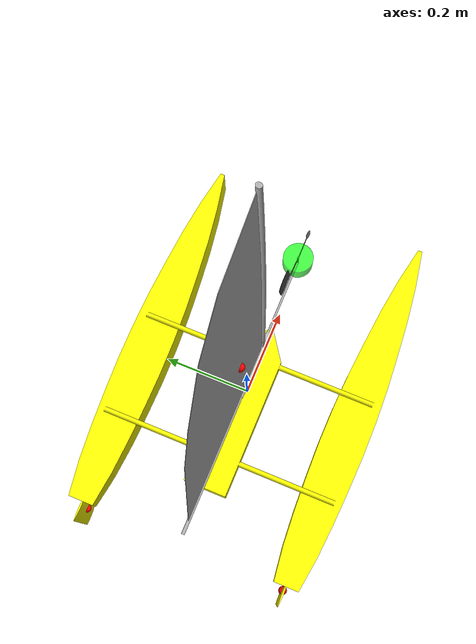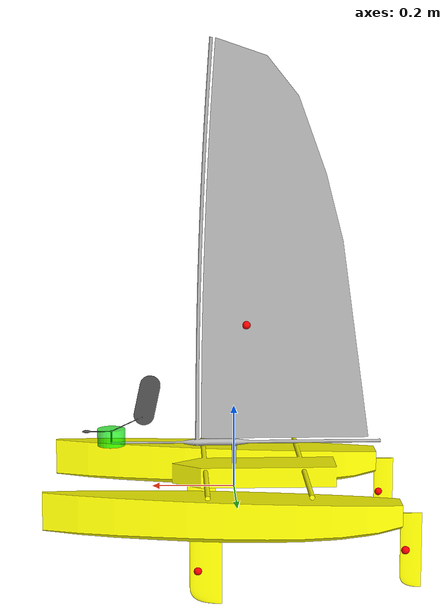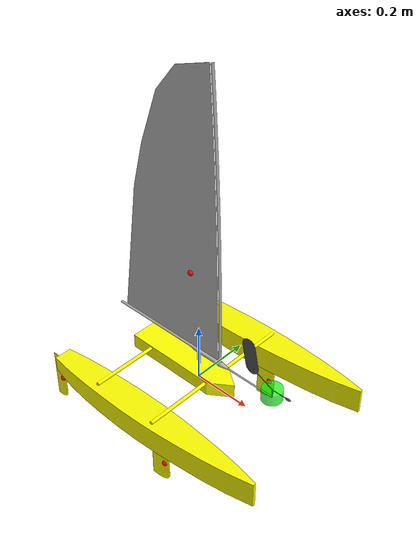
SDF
<sdf version="1.9">
  <model name="catamaran">
    <link name="base_link">
      <inertial>
        <pose>0.04 0 0 0 0 0</pose>
        <mass>1.4</mass>
        <inertia>
          <ixx>0.044213983</ixx>
          <ixy>0</ixy>
          <ixz>0</ixz>
          <iyy>0.082023783</iyy>
          <iyz>0</iyz>
          <izz>0.122933533</izz>
        </inertia>
      </inertial>
      <collision name="hull_left_collision">
        <geometry>
          <mesh>
            <scale>1 1 1</scale>
            <uri>models://catamaran/meshes/hull_left_collision.stl</uri>
          </mesh>
        </geometry>
      </collision>
      <collision name="hull_right_collision">
        <geometry>
          <mesh>
            <scale>1 1 1</scale>
            <uri>models://catamaran/meshes/hull_right_collision.stl</uri>
          </mesh>
        </geometry>
      </collision>
      <visual name="hull_platform_visual">
        <geometry>
          <mesh>
            <scale>1 1 1</scale>
            <uri>models://catamaran/meshes/hull_platform.dae</uri>
          </mesh>
        </geometry>
        <material>
          <diffuse>1 1 0 1</diffuse>
          <ambient>1 1 0 1</ambient>
          <specular>1 1 1 1</specular>
          <pbr>
            <metal>
              <metalness>0.5</metalness>
              <roughness>0.5</roughness>
            </metal>
          </pbr>
        </material>
      </visual>

      <!-- leave visuals for debugging link / joint placement -->

      <visual name="anemometer_visual">
        <pose>0.3 0 0.125 0 0 0</pose>
        <geometry>
          <cylinder>
            <radius>0.034</radius>
            <length>0.04</length>
          </cylinder>
        </geometry>
        <material>
          <ambient>0 1 0 0.7</ambient>
          <diffuse>0 1 0 0.7</diffuse>
          <specular>0.1 0.1 0.1 0.7</specular>
        </material>
      </visual>

      <sensor name="anemometer" type="custom" gz:type="anemometer">
        <pose>0.3 0 0.125 0 0 0</pose>
        <always_on>1</always_on>
        <update_rate>30</update_rate>
        <gz:anemometer>
          <noise type="gaussian">
            <mean>0</mean>
            <stddev>0</stddev>
          </noise>
        </gz:anemometer>
      </sensor>

    </link>

    <link name="fin_left_link">
      <pose>0.113 0.25 -0.055 0 0 0</pose>
      <inertial>
        <pose>-0.0375 0 -0.08 0 0 0</pose>
        <mass>0.1</mass>
        <inertia>
          <ixx>0.000213649</ixx>
          <ixy>0</ixy>
          <ixz>0</ixz>
          <iyy>0.000260208</iyy>
          <iyz>0</iyz>
          <izz>4.71902E-05</izz>
        </inertia>
      </inertial>
      <collision name="collision">
        <geometry>
          <mesh>
            <uri>models://catamaran/meshes/fin_collision.stl</uri>
          </mesh>
        </geometry>
      </collision>
      <visual name="visual">
        <geometry>
          <mesh>
            <uri>models://catamaran/meshes/fin.dae</uri>
          </mesh>
        </geometry>
        <material>
          <diffuse>1 1 0 1</diffuse>
          <ambient>1 1 0 1</ambient>
          <specular>1 1 1 1</specular>
          <pbr>
            <metal>
              <metalness>0.5</metalness>
              <roughness>0.5</roughness>
            </metal>
          </pbr>
        </material>
      </visual>
      <visual name="cp_visual">
        <pose>-0.018875 0 -0.08 0 0 0</pose>
        <geometry>
          <sphere>
            <radius>0.01</radius>
          </sphere>
        </geometry>
        <material>
          <ambient>1 0 0 1</ambient>
          <diffuse>1 0 0 1</diffuse>
          <specular>0.1 0.1 0.1 1</specular>
        </material>
      </visual>
    </link>
    <joint name="fin_left_joint" type="revolute">
      <pose degrees="true">0 0 0 0 0 0</pose>
      <parent>base_link</parent>
      <child>fin_left_link</child>
      <axis>
        <xyz>0 0 1</xyz>
        <limit>
          <lower>0</lower>
          <upper>0</upper>
        </limit>
        <dynamics>
          <damping>1.0</damping>
        </dynamics>
      </axis>
    </joint>

    <link name="fin_right_link">
      <pose>0.113 -0.25 -0.055 0 0 0</pose>
      <inertial>
        <pose>-0.0375 0 -0.08 0 0 0</pose>
        <mass>0.1</mass>
        <inertia>
          <ixx>0.000213649</ixx>
          <ixy>0</ixy>
          <ixz>0</ixz>
          <iyy>0.000260208</iyy>
          <iyz>0</iyz>
          <izz>4.71902E-05</izz>
        </inertia>
      </inertial>
      <collision name="collision">
        <geometry>
          <mesh>
            <uri>models://catamaran/meshes/fin_collision.stl</uri>
          </mesh>
        </geometry>
      </collision>
      <visual name="visual">
        <geometry>
          <mesh>
            <uri>models://catamaran/meshes/fin.dae</uri>
          </mesh>
        </geometry>
        <material>
          <diffuse>1 1 0 1</diffuse>
          <ambient>1 1 0 1</ambient>
          <specular>1 1 1 1</specular>
          <pbr>
            <metal>
              <metalness>0.5</metalness>
              <roughness>0.5</roughness>
            </metal>
          </pbr>
        </material>
      </visual>
      <visual name="cp_visual">
        <pose>-0.018875 0 -0.08 0 0 0</pose>
        <geometry>
          <sphere>
            <radius>0.01</radius>
          </sphere>
        </geometry>
        <material>
          <ambient>1 0 0 1</ambient>
          <diffuse>1 0 0 1</diffuse>
          <specular>0.1 0.1 0.1 1</specular>
        </material>
      </visual>
    </link>
    <joint name="fin_right_joint" type="revolute">
      <pose degrees="true">0 0 0 0 0 0</pose>
      <parent>base_link</parent>
      <child>fin_right_link</child>
      <axis>
        <xyz>0 0 1</xyz>
        <limit>
          <lower>0</lower>
          <upper>0</upper>
        </limit>
        <dynamics>
          <damping>1.0</damping>
        </dynamics>
      </axis>
    </joint>

    <link name="rudder_left_link">
      <pose>-0.377 0.25 0 0 0 0</pose>
      <inertial>
        <pose>-0.025 0 -0.09 0 0 0</pose>
        <mass>0.1</mass>
        <inertia>
          <ixx>0.000270144</ixx>
          <ixy>0</ixy>
          <ixz>0</ixz>
          <iyy>0.000290833</iyy>
          <iyz>0</iyz>
          <izz>2.09775E-05</izz>
        </inertia>
      </inertial>
      <collision name="collision">
        <geometry>
          <mesh>
            <uri>models://catamaran/meshes/rudder_collision.stl</uri>
          </mesh>
        </geometry>
      </collision>
      <visual name="visual">
        <geometry>
          <mesh>
            <uri>models://catamaran/meshes/rudder.dae</uri>
          </mesh>
        </geometry>
        <material>
          <diffuse>1 1 0 1</diffuse>
          <ambient>1 1 0 1</ambient>
          <specular>1 1 1 1</specular>
          <pbr>
            <metal>
              <metalness>0.5</metalness>
              <roughness>0.5</roughness>
            </metal>
          </pbr>
        </material>
      </visual>
      <visual name="cp_visual">
        <pose>-0.012575 0 -0.09 0 0 0</pose>
        <geometry>
          <sphere>
            <radius>0.01</radius>
          </sphere>
        </geometry>
        <material>
          <ambient>1 0 0 1</ambient>
          <diffuse>1 0 0 1</diffuse>
          <specular>0.1 0.1 0.1 1</specular>
        </material>
      </visual>
    </link>
    <joint name="rudder_left_joint" type="revolute">
      <pose degrees="true">0 0 0 0 0 0</pose>
      <parent>base_link</parent>
      <child>rudder_left_link</child>
      <axis>
        <xyz>0 0 1</xyz>
        <limit>
          <lower>-1.5708</lower>
          <upper>1.5708</upper>
        </limit>
        <dynamics>
          <damping>0.001</damping>
        </dynamics>
      </axis>
    </joint>

    <link name="rudder_right_link">
      <pose>-0.377 -0.25 0 0 0 0</pose>
      <inertial>
        <pose>-0.025 0 -0.09 0 0 0</pose>
        <mass>0.1</mass>
        <inertia>
          <ixx>0.000270144</ixx>
          <ixy>0</ixy>
          <ixz>0</ixz>
          <iyy>0.000290833</iyy>
          <iyz>0</iyz>
          <izz>2.09775E-05</izz>
        </inertia>
      </inertial>
      <collision name="collision">
        <geometry>
          <mesh>
            <uri>models://catamaran/meshes/rudder_collision.stl</uri>
          </mesh>
        </geometry>
      </collision>
      <visual name="visual">
        <geometry>
          <mesh>
            <uri>models://catamaran/meshes/rudder.dae</uri>
          </mesh>
        </geometry>
        <material>
          <diffuse>1 1 0 1</diffuse>
          <ambient>1 1 0 1</ambient>
          <specular>1 1 1 1</specular>
          <pbr>
            <metal>
              <metalness>0.5</metalness>
              <roughness>0.5</roughness>
            </metal>
          </pbr>
        </material>
      </visual>
      <visual name="cp_visual">
        <pose>-0.012575 0 -0.09 0 0 0</pose>
        <geometry>
          <sphere>
            <radius>0.01</radius>
          </sphere>
        </geometry>
        <material>
          <ambient>1 0 0 1</ambient>
          <diffuse>1 0 0 1</diffuse>
          <specular>0.1 0.1 0.1 1</specular>
        </material>
      </visual>
    </link>
    <joint name="rudder_right_joint" type="revolute">
      <pose degrees="true">0 0 0 0 0 0</pose>
      <parent>base_link</parent>
      <child>rudder_right_link</child>
      <axis>
        <xyz>0 0 1</xyz>
        <limit>
          <lower>-1.5708</lower>
          <upper>1.5708</upper>
        </limit>
        <dynamics>
          <damping>0.001</damping>
        </dynamics>
      </axis>
    </joint>

    <link name="rig_link">
      <pose>0 0 0 0 0 0</pose>
      <inertial>
        <pose>0 0 0.4 0 0 0</pose>
        <mass>0.5</mass>
        <inertia>
          <ixx>0.081670833</ixx>
          <ixy>0</ixy>
          <iyy>0.088333333</iyy>
          <iyz>0</iyz>
          <izz>0.006670833</izz>
        </inertia>
      </inertial>
      <collision name="rig_collision">
        <geometry>
          <mesh>
            <uri>models://catamaran/meshes/rig.dae</uri>
          </mesh>
        </geometry>
      </collision>
      <visual name="rig_visual">
        <geometry>
          <mesh>
            <uri>models://catamaran/meshes/rig.dae</uri>
          </mesh>
        </geometry>
        <material>
          <diffuse>0.7 0.7 0.7 1</diffuse>
          <ambient>0.7 0.7 0.7 1</ambient>
          <specular>0.1 0.1 0.1 1</specular>
          <pbr>
            <metal>
              <metalness>0.5</metalness>
              <roughness>0.5</roughness>
            </metal>
          </pbr>
        </material>
      </visual>
      <visual name="cp_visual">
        <pose>-0.03 0 0.4 0 0 0</pose>
        <geometry>
          <sphere>
            <radius>0.01</radius>
          </sphere>
        </geometry>
        <material>
          <ambient>1 0 0 1</ambient>
          <diffuse>1 0 0 1</diffuse>
          <specular>0.1 0.1 0.1 1</specular>
        </material>
      </visual>
    </link>
    <joint name="rig_joint" type="revolute">
      <pose degrees="true">0 0 0 0 0 0</pose>
      <parent>base_link</parent>
      <child>rig_link</child>
      <axis>
        <xyz>0 0 1</xyz>
        <limit>
          <lower>-1.5708</lower>
          <upper>1.5708</upper>
        </limit>
        <dynamics>
          <damping>0.01</damping>
        </dynamics>
      </axis>
    </joint>

    <link name="wind_sensor_link">
      <pose>0.3 0 0.125 0 0 0</pose>
      <inertial>
        <mass>0.05</mass>
        <inertia>
          <ixx>0.001</ixx>
          <ixy>0</ixy>
          <ixz>0</ixz>
          <iyy>0.001</iyy>
          <iyz>0</iyz>
          <izz>0.001</izz>
        </inertia>
      </inertial>
      <collision name="collision">
        <geometry>
          <mesh>
            <uri>models://catamaran/meshes/wind_sensor_collision.stl</uri>
          </mesh>
        </geometry>
      </collision>
      <visual name="visual">
        <geometry>
          <mesh>
            <uri>models://catamaran/meshes/wind_sensor.dae</uri>
          </mesh>
        </geometry>
        <material>
          <diffuse>0.3 0.3 0.3 1</diffuse>
          <ambient>0.3 0.3 0.3 1</ambient>
          <specular>0.1 0.1 0.1 1</specular>
          <pbr>
            <metal>
              <metalness>0.5</metalness>
              <roughness>0.5</roughness>
            </metal>
          </pbr>
        </material>
      </visual>
    </link>
    <joint name="wind_sensor_joint" type="revolute">
      <pose degrees="true">0 0 0 0 0 0</pose>
      <parent>rig_link</parent>
      <child>wind_sensor_link</child>
      <axis>
        <xyz>0 0 1</xyz>
        <limit>
          <lower>-1.0E-16</lower>
          <upper>1.0E16</upper>
        </limit>
        <dynamics>
          <damping>0.001</damping>
        </dynamics>
      </axis>
    </joint>

    <!-- sensors -->
    <link name="imu_link">
      <inertial>
        <pose>0 0 0 0 0 0</pose>
        <mass>0.1</mass>
        <inertia>
          <ixx>0.0001</ixx>
          <ixy>0</ixy>
          <ixz>0</ixz>
          <iyy>0.0001</iyy>
          <iyz>0</iyz>
          <izz>0.0001</izz>
        </inertia>
      </inertial>
      <sensor name="imu_sensor" type="imu">
        <pose degrees="true">0 0 0 180 0 0</pose>
        <always_on>1</always_on>
        <update_rate>1000.0</update_rate>
      </sensor>
    </link>
    <joint name="imu_joint" type="revolute">
      <child>imu_link</child>
      <parent>base_link</parent>
      <axis>
        <xyz>0 0 1</xyz>
        <limit>
          <lower>0</lower>
          <upper>0</upper>
        </limit>
        <dynamics>
          <damping>1.0</damping>
        </dynamics>
      </axis>
    </joint>

    <!-- plugins -->
    <plugin name="gz::sim::systems::JointStatePublisher"
      filename="gz-sim-joint-state-publisher-system">
    </plugin>

    <plugin name="gz::sim::systems::OdometryPublisher"
      filename="gz-sim-odometry-publisher-system">
      <odom_frame>odom</odom_frame>
      <robot_base_frame>base_link</robot_base_frame>
      <dimensions>3</dimensions>
    </plugin>

    <plugin name="gz::sim::systems::JointPositionController"
      filename="gz-sim-joint-position-controller-system">
      <joint_name>rudder_left_joint</joint_name>
      <topic>/rudder_left_joint/cmd_pos</topic>
      <p_gain>1.0</p_gain>
      <i_gain>0.0</i_gain>
      <d_gain>0.01</d_gain>
      <i_max>1</i_max>
      <i_min>-1</i_min>
      <cmd_max>10.0</cmd_max>
      <cmd_min>-10.0</cmd_min>
    </plugin>

    <plugin name="gz::sim::systems::JointPositionController"
      filename="gz-sim-joint-position-controller-system">
      <joint_name>rudder_right_joint</joint_name>
      <topic>/rudder_right_joint/cmd_pos</topic>
      <p_gain>1.0</p_gain>
      <i_gain>0.0</i_gain>
      <d_gain>0.01</d_gain>
      <i_max>1</i_max>
      <i_min>-1</i_min>
      <cmd_max>10.0</cmd_max>
      <cmd_min>-10.0</cmd_min>
    </plugin>

    <plugin name="gz::sim::systems::SailPositionController"
      filename="asv_sim2-sail-position-controller-system">
      <joint_name>rig_joint</joint_name>
      <topic>/rig_joint/cmd_pos</topic>
      <p_gain>0.3</p_gain>
      <i_gain>0.1</i_gain>
      <d_gain>0.05</d_gain>
      <i_max>2</i_max>
      <i_min>-2</i_min>
      <cmd_max>100</cmd_max>
      <cmd_min>-100</cmd_min>
    </plugin>

    <plugin name="gz::sim::systems::SailLiftDrag"
        filename="asv_sim2-sail-lift-drag-system">
      <a0>0.0</a0>
      <cla>6.2832</cla>
      <alpha_stall>0.1592</alpha_stall>
      <cla_stall>-0.7083</cla_stall>
      <cda>0.63662</cda>
      <area>0.32</area>
      <fluid_density>1.2</fluid_density>
      <forward>1 0 0</forward>
      <upward>0 1 0</upward>
      <cp>-0.03 0 0.4</cp>
      <link_name>rig_link</link_name>
      <radial_symmetry>1</radial_symmetry>
      <topic>lift_drag</topic>
    </plugin>

    <plugin name="gz::sim::systems::FoilLiftDrag"
        filename="asv_sim2-foil-lift-drag-system">
      <a0>0.0</a0>
      <cla>6.2832</cla>
      <alpha_stall>0.1592</alpha_stall>
      <cla_stall>-0.7083</cla_stall>
      <cda>0.63662</cda>
      <area>0.00905</area>
      <fluid_density>1025</fluid_density>
      <forward>1 0 0</forward>
      <upward>0 1 0</upward>
      <cp>-0.012575 0 -0.09</cp>
      <link_name>rudder_left_link</link_name>
      <radial_symmetry>1</radial_symmetry>
      <topic>lift_drag</topic>
    </plugin>

    <plugin name="gz::sim::systems::FoilLiftDrag"
        filename="asv_sim2-foil-lift-drag-system">
      <a0>0.0</a0>
      <cla>6.2832</cla>
      <alpha_stall>0.1592</alpha_stall>
      <cla_stall>-0.7083</cla_stall>
      <cda>0.63662</cda>
      <area>0.00905</area>
      <fluid_density>1025</fluid_density>
      <forward>1 0 0</forward>
      <upward>0 1 0</upward>
      <cp>-0.012575 0 -0.09</cp>
      <link_name>rudder_right_link</link_name>
      <radial_symmetry>1</radial_symmetry>
      <topic>lift_drag</topic>
    </plugin>

    <plugin name="gz::sim::systems::FoilLiftDrag"
        filename="asv_sim2-foil-lift-drag-system">
      <a0>0.0</a0>
      <cla>6.2832</cla>
      <alpha_stall>0.1592</alpha_stall>
      <cla_stall>-0.7083</cla_stall>
      <cda>0.63662</cda>
      <area>0.01208</area>
      <fluid_density>1025</fluid_density>
      <forward>1 0 0</forward>
      <upward>0 1 0</upward>
      <cp>-0.018875 0 -0.08</cp>
      <link_name>fin_left_link</link_name>
      <radial_symmetry>1</radial_symmetry>
      <topic>lift_drag</topic>
    </plugin>

    <plugin name="gz::sim::systems::FoilLiftDrag"
        filename="asv_sim2-foil-lift-drag-system">
      <a0>0.0</a0>
      <cla>6.2832</cla>
      <alpha_stall>0.1592</alpha_stall>
      <cla_stall>-0.7083</cla_stall>
      <cda>0.63662</cda>
      <area>0.01208</area>
      <fluid_density>1025</fluid_density>
      <forward>1 0 0</forward>
      <upward>0 1 0</upward>
      <cp>-0.018875 0 -0.08</cp>
      <link_name>fin_right_link</link_name>
      <radial_symmetry>1</radial_symmetry>
      <topic>lift_drag</topic>
    </plugin>

    <!-- hydrodynamics plugin -->
    <plugin name="gz::sim::systems::Hydrodynamics"
        filename="gz-waves1-hydrodynamics-system">
        <enable>catamaran::base_link</enable>
        <hydrodynamics>
          <damping_on>1</damping_on>
          <viscous_drag_on>1</viscous_drag_on>
          <pressure_drag_on>1</pressure_drag_on>
        </hydrodynamics>
    </plugin>

    <!-- ardupilot plugin -->
    <plugin name="ArduPilotPlugin" filename="ArduPilotPlugin">
      <fdm_addr>127.0.0.1</fdm_addr>
      <fdm_port_in>9002</fdm_port_in>
      <connectionTimeoutMaxCount>5</connectionTimeoutMaxCount>
      <lock_step>1</lock_step>
      <no_time_sync>1</no_time_sync>
      <gazeboXYZToNED degrees="true">0 0 0 180 0 90</gazeboXYZToNED>
      <modelXYZToAirplaneXForwardZDown degrees="true">0 0 0 180 0 0</modelXYZToAirplaneXForwardZDown>
      <imuName>imu_link::imu_sensor</imuName>
      <anemometer>base_link::anemometer</anemometer>

      <!--
        SERVO1_FUNCTION 26 (GroundSteering)
        SERVO1_MAX 2000
        SERVO1_MIN 1000

        Input command in [0, 1]
        Target rudder position in [-PI/4, PI/4]
      -->
      <control channel="0">
        <jointName>rudder_left_joint</jointName>
        <useForce>1</useForce>
        <multiplier>1.570796</multiplier>
        <offset>-0.5</offset>
        <servo_max>2000</servo_max>
        <servo_min>1000</servo_min>
        <type>COMMAND</type>
        <cmd_topic>/rudder_left_joint/cmd_pos</cmd_topic>
      </control>

      <control channel="0">
        <jointName>rudder_right_joint</jointName>
        <useForce>1</useForce>
        <multiplier>1.570796</multiplier>
        <offset>-0.5</offset>
        <servo_max>2000</servo_max>
        <servo_min>1000</servo_min>
        <type>COMMAND</type>
        <cmd_topic>/rudder_right_joint/cmd_pos</cmd_topic>
      </control>

      <control channel="3">
        <jointName>rig_joint</jointName>
        <useForce>1</useForce>
        <multiplier>1.57079632</multiplier>
        <offset>0</offset>
        <type>COMMAND</type>
        <cmd_topic>/rig_joint/cmd_pos</cmd_topic>
      </control>
    </plugin>

  </model>
</sdf>
